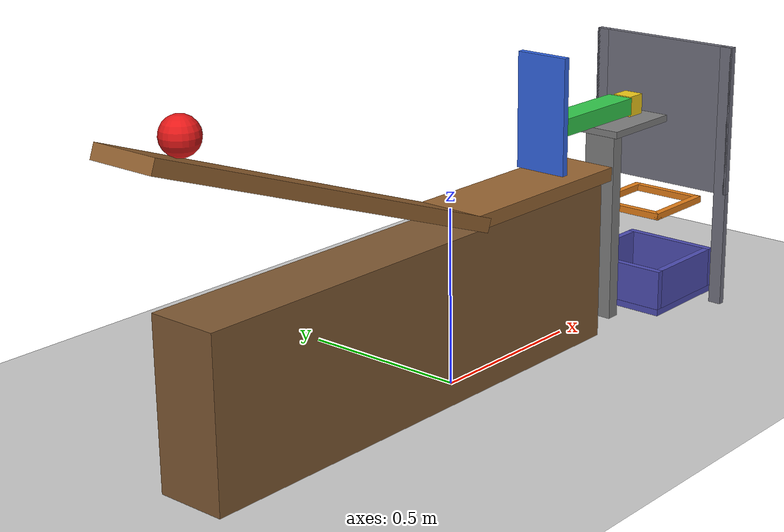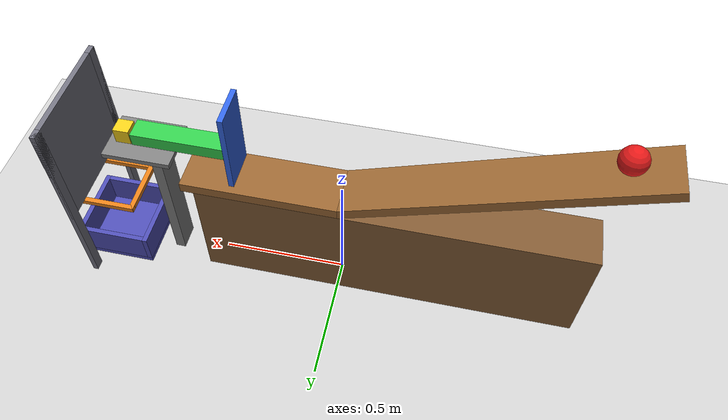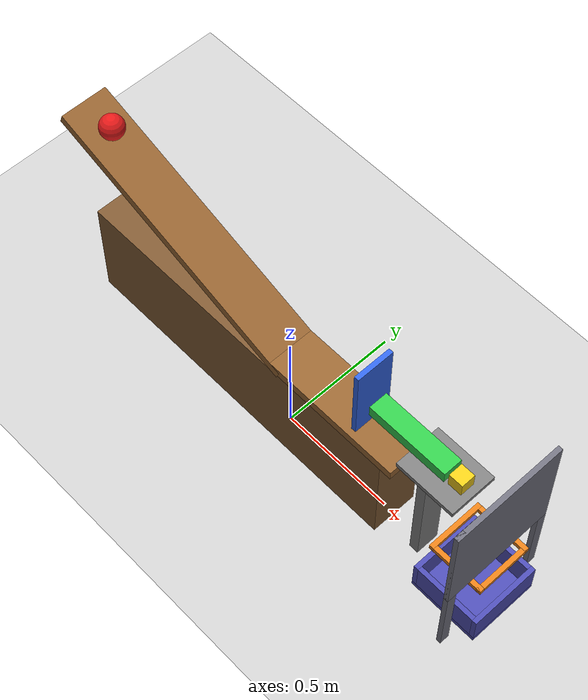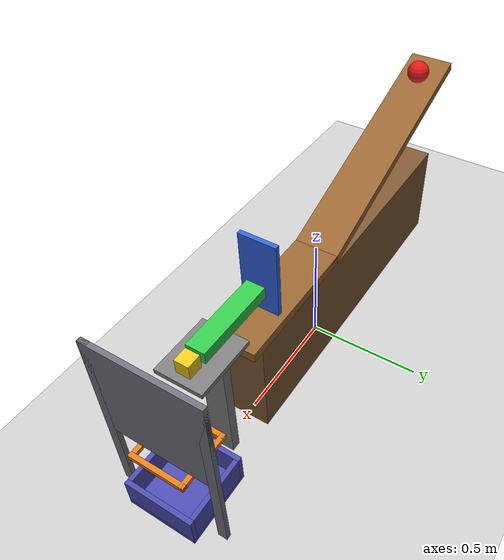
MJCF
<mujoco model="ramp_paddle_slider_block">
  <compiler angle="degree"/>
  <option timestep="0.002" gravity="0 0 -9.81"/>
  <worldbody>
    <light name="main_light" pos="0 0 3" dir="0 0 -1" diffuse="0.8 0.8 0.8"/>
    <geom name="floor" type="plane" size="3 3 0.1" pos="0 0 0" rgba="0.8 0.8 0.8 1"/>

    <body name="ramp" pos="0 0 0">
      <geom name="ramp_incline" type="box" size="0.6 0.1 0.02" pos="-0.5236 0 0.6693" euler="0 20 0" rgba="0.6 0.4 0.2 1"/>
      <geom name="ramp_flat" type="box" size="0.3 0.1 0.02" pos="0.3 0 0.48" rgba="0.6 0.4 0.2 1"/>
      <geom name="ramp_base" type="box" size="0.75 0.1 0.23" pos="-0.2 0 0.23" rgba="0.5 0.35 0.2 1"/>
    </body>

    <body name="ball" pos="-0.9226 0 0.891">
      <freejoint name="ball_free"/>
      <geom name="ball_geom" type="sphere" size="0.05" mass="1" rgba="0.9 0.1 0.1 1"/>
    </body>

    <body name="paddle" pos="0.4 0 0.85">
      <joint name="paddle_hinge" type="hinge" axis="0 -1 0" pos="0 0 0" range="-5 25" limited="true" damping="0.002"/>
      <geom name="paddle_plate" type="box" size="0.01 0.08 0.1675" pos="0 0 -0.1675" mass="0.2" rgba="0.2 0.4 0.9 1"/>
    </body>

    <body name="slider" pos="0.605 0 0.635">
      <joint name="slider_slide" type="slide" axis="1 0 0" range="0 0.07" limited="true"/>
      <geom name="slider_bar" type="box" size="0.175 0.04 0.025" mass="0.3" rgba="0.2 0.8 0.3 1"/>
    </body>

    <body name="ledge" pos="0 0 0">
      <geom name="ledge_top" type="box" size="0.13 0.1 0.01" pos="0.75 0 0.59" friction="0.2 0.005 0.0001" rgba="0.5 0.5 0.5 1"/>
      <geom name="ledge_post" type="box" size="0.02 0.05 0.29" pos="0.70 0 0.29" rgba="0.5 0.5 0.5 1"/>
      <geom name="ledge_backboard" type="box" size="0.01 0.24 0.225" pos="1.01 0 0.575" rgba="0.45 0.45 0.5 1"/>
      <geom name="ledge_board_post_left" type="box" size="0.01 0.02 0.40" pos="1.01 0.22 0.40" rgba="0.45 0.45 0.5 1"/>
      <geom name="ledge_board_post_right" type="box" size="0.01 0.02 0.40" pos="1.01 -0.22 0.40" rgba="0.45 0.45 0.5 1"/>
    </body>

    <body name="block" pos="0.82 0 0.63">
      <freejoint name="block_free"/>
      <geom name="block_geom" type="box" size="0.03 0.03 0.03" mass="0.1" friction="0.2 0.005 0.0001" rgba="0.95 0.8 0.1 1"/>
    </body>

    <body name="hoop" pos="0.94 0 0.30">
      <geom name="hoop_bar_xneg" type="box" size="0.01 0.12 0.01" pos="-0.11 0 0" rgba="0.9 0.5 0.1 1"/>
      <geom name="hoop_bar_xpos" type="box" size="0.01 0.12 0.01" pos="0.11 0 0" rgba="0.9 0.5 0.1 1"/>
      <geom name="hoop_bar_yneg" type="box" size="0.12 0.01 0.01" pos="0 -0.11 0" rgba="0.9 0.5 0.1 1"/>
      <geom name="hoop_bar_ypos" type="box" size="0.12 0.01 0.01" pos="0 0.11 0" rgba="0.9 0.5 0.1 1"/>
    </body>

    <body name="box" pos="0.94 0 0">
      <geom name="box_base" type="box" size="0.15 0.15 0.01" pos="0 0 0.01" rgba="0.3 0.3 0.7 1"/>
      <geom name="box_wall_xneg" type="box" size="0.01 0.15 0.06" pos="-0.14 0 0.08" rgba="0.3 0.3 0.7 1"/>
      <geom name="box_wall_xpos" type="box" size="0.01 0.15 0.06" pos="0.14 0 0.08" rgba="0.3 0.3 0.7 1"/>
      <geom name="box_wall_yneg" type="box" size="0.13 0.01 0.06" pos="0 -0.14 0.08" rgba="0.3 0.3 0.7 1"/>
      <geom name="box_wall_ypos" type="box" size="0.13 0.01 0.06" pos="0 0.14 0.08" rgba="0.3 0.3 0.7 1"/>
    </body>
  </worldbody>
</mujoco>
